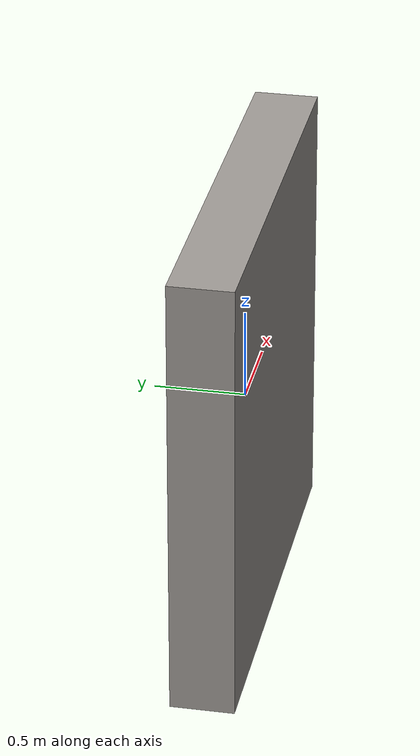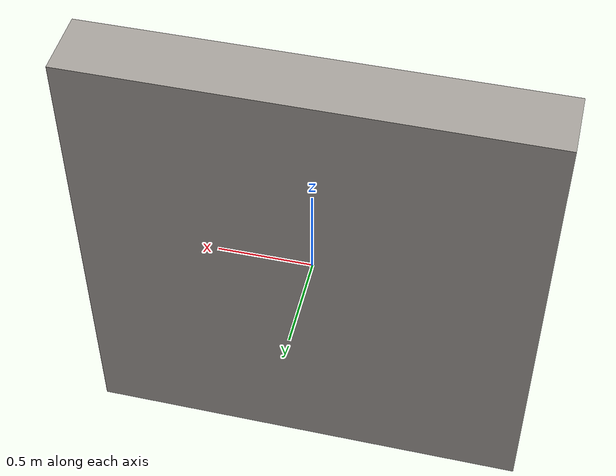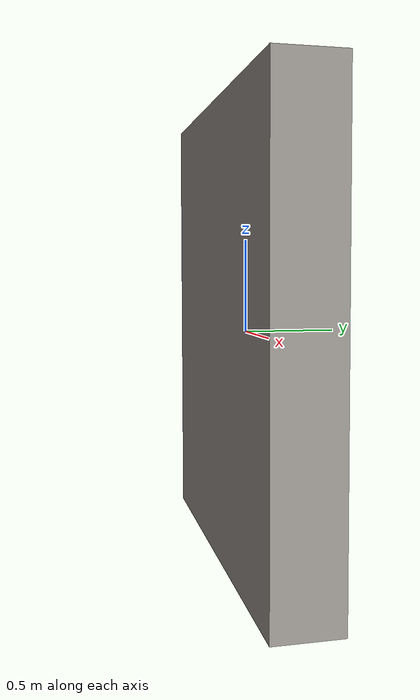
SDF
<?xml version="1.0"?>
<sdf version="1.6">
  <model name="clinic_lift_portal">
    <static>true</static>
    <link name="link">
      <collision name="col">
        <geometry>
          <box>
            <size>2.4 0.35 2.5</size>
          </box>
        </geometry>
      </collision>
      <visual name="vis">
        <geometry>
          <box>
            <size>2.4 0.35 2.5</size>
          </box>
        </geometry>
        <material>
          <ambient>0.62 0.6 0.58 1</ambient>
          <diffuse>0.62 0.6 0.58 1</diffuse>
        </material>
      </visual>
    </link>
  </model>
</sdf>
